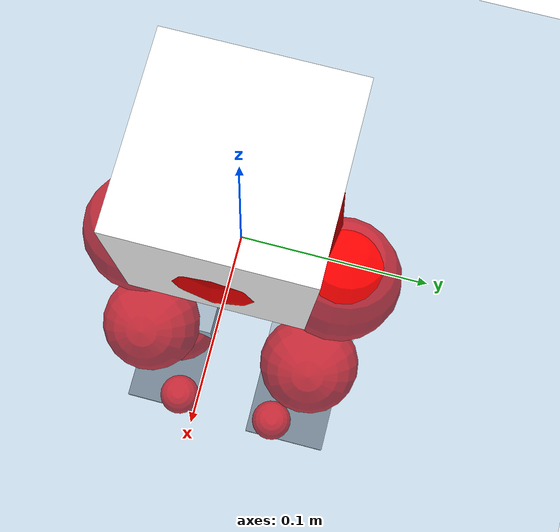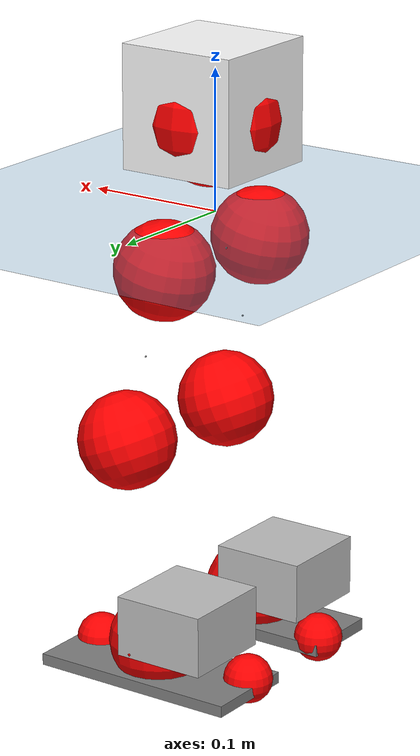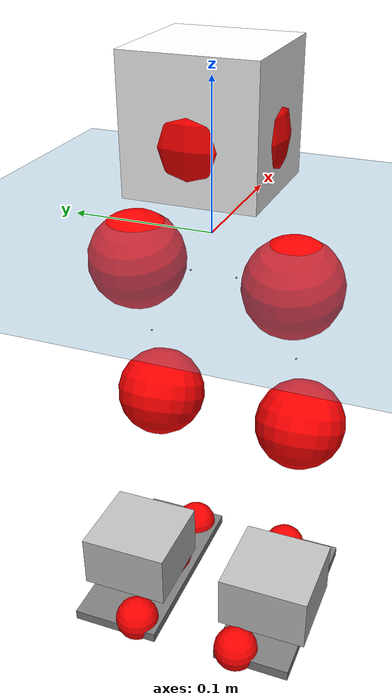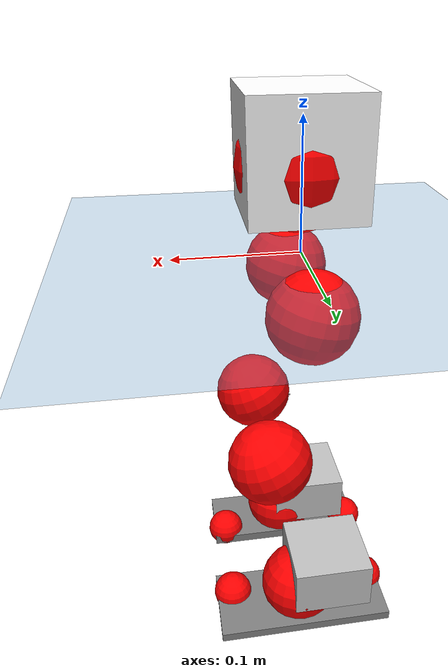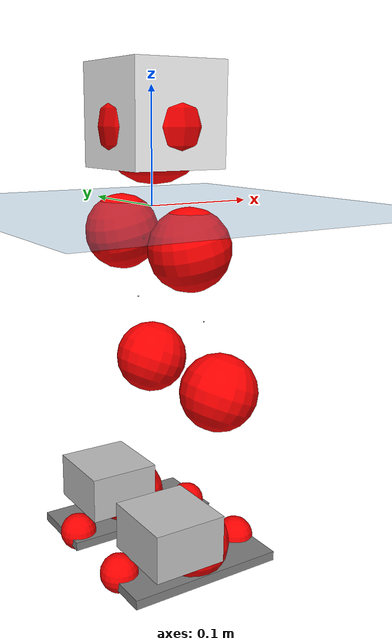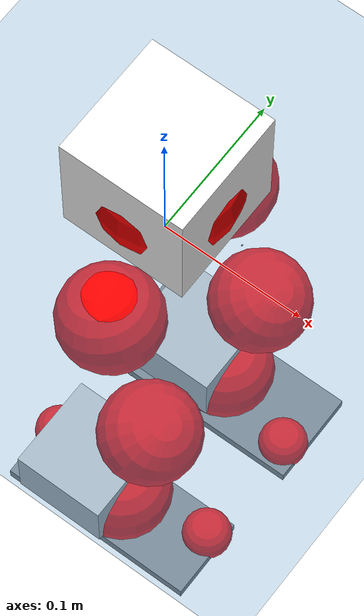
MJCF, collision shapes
<mujoco model="pi_12dof_release_v1">
  <compiler angle="radian" assetdir="assets" balanceinertia="true" inertiafromgeom="false"/>

  <option timestep="0.005" density="1.2" viscosity="2e-05"/>

  <size nkey="1"/>

  <visual>
    <quality shadowsize="8192"/>
    <map shadowclip="0.5"/>
  </visual>

  <default>
    <default class="/">
      <joint armature="0.01" damping="0.01" frictionloss="0.01"/>
      <geom contype="0" conaffinity="0" group="1" solref="-1000 -80"/>
      <site size="0.01 0.005 0.005" group="5"/>
      <general forcelimited="true" biastype="affine" gainprm="20" biasprm="0 -20 -0.5"/>
      <default class="foot">
        <geom size="0.0845 0.036 0.005" type="box" condim="6" group="4" priority="1" friction="0.9 0.2 0.2" solimp="0.015 1 0.005"/>
      </default>
      <default class="reward_collision_sphere">
        <geom group="5" rgba="1 0 0 1"/>
      </default>
    </default>
  </default>

  <asset>
    <texture type="skybox" colorspace="auto" name="//unnamed_texture_0" builtin="gradient" rgb1="0.95 0.95 0.95" rgb2="0.95 0.95 0.95" width="100" height="600"/>
    <texture type="2d" colorspace="auto" name="texplane" builtin="checker" rgb1="0.345 0.575 0.748" rgb2="0.345 0.575 0.748" markrgb="1 1 1" width="512" height="512"/>
    <material name="MatPlane" class="/" texture="texplane" texuniform="true" texrepeat="2 2" specular="0.9"/>
    <mesh name="baselink_1" class="/" file="baselink_1.STL"/>
    <mesh name="r_hip_pitch_link" class="/" file="r_hip_pitch_link.STL"/>
    <mesh name="r_hip_roll_link" class="/" file="r_hip_roll_link.STL"/>
    <mesh name="r_thigh_link" class="/" file="r_thigh_link.STL"/>
    <mesh name="r_calf_link" class="/" file="r_calf_link.STL"/>
    <mesh name="r_ankle_pitch_link" class="/" file="r_ankle_pitch_link.STL"/>
    <mesh name="r_ankle_roll_link" class="/" file="r_ankle_roll_link.STL"/>
    <mesh name="l_hip_pitch_link" class="/" file="l_hip_pitch_link.STL"/>
    <mesh name="l_hip_roll_link" class="/" file="l_hip_roll_link.STL"/>
    <mesh name="l_thigh_link" class="/" file="l_thigh_link.STL"/>
    <mesh name="l_calf_link" class="/" file="l_calf_link.STL"/>
    <mesh name="l_ankle_pitch_link" class="/" file="l_ankle_pitch_link.STL"/>
    <mesh name="l_ankle_roll_link" class="/" file="l_ankle_roll_link.STL"/>
  </asset>

  <worldbody>
    <geom name="floor" class="/" size="100 100 0.125" type="plane" group="0" material="MatPlane"/>
    <light name="toplight_shadow" class="/" pos="0 0 5" dir="0.0990148 0.0990148 -0.990148" type="directional" ambient="0.04 0.04 0.04" diffuse="0.55 0.55 0.55" specular="0.12 0.12 0.12"/>
    <light name="toplight_fill" class="/" pos="0 0 5" dir="0.0990148 0.0990148 -0.990148" type="directional" castshadow="false" ambient="0.04 0.04 0.04" diffuse="0.3 0.3 0.3" specular="0.08 0.08 0.08"/>
    <body name="trunk" pos="0.0021052 -0.000317811 0.000862991" quat="1 -0.000238595 0.000768186 0.000270424">
      <inertial pos="0.000179915 -0.0016751 0.0371868" quat="0.695217 0.00924915 0.0090868 0.718683" mass="1.36507" diaginertia="0.00710214 0.00192667 0.00286727"/>
      <joint name="//unnamed_joint_0" type="free"/>
      <geom name="//unnamed_geom_1" class="/" type="mesh" density="0" rgba="1 1 1 1" mesh="baselink_1"/>
      <geom name="//unnamed_geom_2" class="/" size="0.0434855 0.0434855 0.0434855" pos="0 0 0.0746226" type="box" rgba="1 1 1 1"/>
      <geom name="//unnamed_geom_3" class="reward_collision_sphere" size="0.047834" pos="0 0 0.0652948"/>
      <site name="imu" class="/" pos="-0.00216453 -0.00292361 0.00770003" size="0.0086971"/>
      <camera name="track" class="/" pos="0 -1.47235 0" quat="0.707107 0.707107 0 0" mode="trackcom"/>
      <camera name="ego_camera" class="/" pos="0.0705127 0 0.167901" quat="-0.5 -0.5 0.5 0.5"/>
      <body name="r_hip_pitch_link" pos="0.000236037 -0.0162464 -0.0313914" quat="0.99216 0.000523176 -0.124969 -0.000181822">
        <inertial pos="0.000705452 -0.042074 -0.000180128" quat="-0.0185093 0.704341 -0.0272485 0.709097" mass="0.245335" diaginertia="8.16213e-05 2.09568e-05 5.85359e-05"/>
        <joint name="r_hip_pitch_joint" class="/" pos="0 0 0" axis="-0.00201088 -0.999998 0.000450535" stiffness="0.00168233" range="-1.73296 1.25746" armature="0.00897641" damping="0.0182368" frictionloss="0.00890806"/>
        <geom name="//unnamed_geom_4" class="/" type="mesh" density="0" rgba="0.75294 0.75294 0.75294 1" mesh="r_hip_pitch_link"/>
        <geom name="//unnamed_geom_5" class="/" size="0.000434855 0.000434855 0.000434855" type="box" rgba="0.75294 0.75294 0.75294 1"/>
        <body name="r_hip_roll_link" pos="-0.000471644 -0.0400947 5.03129e-05" quat="1 -0.000208993 -0.000414179 -8.08222e-05">
          <inertial pos="-0.000472591 -0.000242957 -0.0590857" quat="0.706122 -0.07926 -0.08246 0.698791" mass="0.253639" diaginertia="0.000241754 6.00877e-05 9.26884e-05"/>
          <joint name="r_hip_roll_joint" class="/" pos="0 0 0" axis="-0.999996 0.000892976 -0.00257975" range="-0.110043 0.489566" armature="0.00913078" damping="0" frictionloss="0.00915737"/>
          <geom name="//unnamed_geom_6" class="/" type="mesh" density="0" rgba="0.75294 0.75294 0.75294 1" mesh="r_hip_roll_link"/>
          <geom name="//unnamed_geom_7" class="/" size="0.000434855 0.000434855 0.000434855" type="box" rgba="0.75294 0.75294 0.75294 1"/>
          <geom name="//unnamed_geom_8" class="reward_collision_sphere" size="0.0347884"/>
          <body name="r_thigh_link" pos="-0.000959737 -0.000729911 -0.0638655" quat="1 6.17735e-05 3.24853e-05 9.54945e-05">
            <inertial pos="-0.00050354 0.000849818 -0.044202" quat="0.734377 0.678737 0.00178745 -0.0018932" mass="0.0741337" diaginertia="9.47247e-05 2.10001e-05 4.15942e-05"/>
            <joint name="r_thigh_joint" class="/" pos="0 0 0" axis="-0.00187339 0.0010243 -0.999998" range="-0.317601 0.58559" armature="0.00885383" damping="0.00222177" frictionloss="0.00777427"/>
            <geom name="//unnamed_geom_9" class="/" type="mesh" density="0" rgba="0.75294 0.75294 0.75294 1" mesh="r_thigh_link"/>
            <geom name="//unnamed_geom_10" class="/" size="0.000434855 0.000434855 0.000434855" type="box" rgba="0.75294 0.75294 0.75294 1"/>
            <body name="r_calf_link" pos="-0.000973265 -0.00200633 -0.0674197" quat="0.947678 -0.000294181 0.319227 0.000199521">
              <inertial pos="-0.00116715 -0.00196774 -0.0649752" quat="0.999944 -0.0032702 0.00160586 0.00989371" mass="0.532411" diaginertia="0.0025849 0.000761921 0.000124144"/>
              <joint name="r_calf_joint" class="/" pos="0 0 0" axis="0.00140589 -0.999998 0.00130976" range="-1.61105 0.637314" armature="0.00859734" damping="0.00868205" frictionloss="0.0089614"/>
              <geom name="//unnamed_geom_11" class="/" type="mesh" density="0" rgba="0.75294 0.75294 0.75294 1" mesh="r_calf_link"/>
              <geom name="//unnamed_geom_12" class="/" size="0.000434855 0.000434855 0.000434855" type="box" rgba="0.75294 0.75294 0.75294 1"/>
              <geom name="//unnamed_geom_13" class="reward_collision_sphere" size="0.0347884"/>
              <body name="r_ankle_pitch_link" pos="-0.000177779 -0.000997979 -0.130898" quat="0.980063 -4.9734e-07 -0.198687 -1.0997e-05">
                <inertial pos="0.00399556 0.00204546 -0.000852715" quat="0.00239253 0.707095 -0.00225383 0.707111" mass="0.116629" diaginertia="0.000226926 4.89984e-05 8.66099e-05"/>
                <joint name="r_ankle_pitch_joint" class="/" pos="0 0 0" axis="0.000774359 -0.999971 0.00758396" range="-1.3167 0.497906" armature="0.00880702" damping="0.0037306" frictionloss="0.00848936"/>
                <geom name="//unnamed_geom_14" class="/" type="mesh" density="0" rgba="0.75294 0.75294 0.75294 1" mesh="r_ankle_pitch_link"/>
                <geom name="//unnamed_geom_15" class="/" size="0.0339187 0.0347884 0.0217427" type="box" rgba="0.75294 0.75294 0.75294 1"/>
                <body name="r_ankle_roll_link" pos="0.0717464 0.00267252 0.000727233" quat="1 -1.08837e-05 9.53701e-06 0.000148978">
                  <inertial pos="-0.0224127 0.00054258 -0.0136545" quat="0.56067 0.434694 0.43643 0.553371" mass="0.341965" diaginertia="0.000833705 0.000223523 0.00019937"/>
                  <joint name="r_ankle_roll_joint" class="/" pos="0 0 0" axis="-0.999941 -0.00349161 -0.0102993" range="-0.184425 0.157707" armature="0.00938334" damping="0.00713849" frictionloss="0.00869131"/>
                  <geom name="//unnamed_geom_16" class="/" type="mesh" density="0" rgba="0.75294 0.75294 0.75294 1" mesh="r_ankle_roll_link"/>
                  <geom name="//unnamed_geom_17" class="/" type="mesh" rgba="0.75294 0.75294 0.75294 1" mesh="r_ankle_roll_link"/>
                  <geom name="right_foot" class="foot" size="0.0734785 0.0302226 0.0043429" pos="-0.0479486 0 -0.0410424"/>
                  <geom name="//unnamed_geom_19" class="reward_collision_sphere" size="0.0347884" pos="-0.0470085 0 -0.0186557"/>
                  <geom name="//unnamed_geom_20" class="reward_collision_sphere" size="0.0173942" pos="0.0141025 0.0147235 -0.0373113"/>
                  <geom name="//unnamed_geom_21" class="reward_collision_sphere" size="0.0173942" pos="-0.11282 0.0147235 -0.0373113"/>
                  <site name="right_foot" class="foot" pos="-0.0479486 0 -0.0410424" size="0.0086971"/>
                </body>
              </body>
            </body>
          </body>
        </body>
      </body>
      <body name="l_hip_pitch_link" pos="-0.000208151 0.0167244 -0.030912" quat="0.992195 -3.9178e-05 -0.124693 -1.28755e-05">
        <inertial pos="-0.000179696 0.0413145 -0.000488946" quat="-0.0348335 0.701833 0.0383906 0.710453" mass="0.261527" diaginertia="9.4645e-05 2.27692e-05 7.23768e-05"/>
        <joint name="l_hip_pitch_joint" class="/" pos="0 0 0" axis="0.00218133 0.999954 -0.00929987" range="-1.26742 1.75197" armature="0.0085552" damping="0.00609192" frictionloss="0.00871851"/>
        <geom name="//unnamed_geom_22" class="/" type="mesh" density="0" rgba="0.75294 0.75294 0.75294 1" mesh="l_hip_pitch_link"/>
        <geom name="//unnamed_geom_23" class="/" size="0.000434855 0.000434855 0.000434855" type="box" rgba="0.75294 0.75294 0.75294 1"/>
        <body name="l_hip_roll_link" pos="0.000418026 0.0399582 0.00163085" quat="1 9.80569e-05 -0.000217667 7.55508e-05">
          <inertial pos="-0.00143681 -2.70601e-05 -0.0569566" quat="0.698431 -0.0721039 -0.0746664 0.708111" mass="0.259499" diaginertia="0.000242606 5.9724e-05 8.99932e-05"/>
          <joint name="l_hip_roll_joint" class="/" pos="0 0 0" axis="-0.999992 -0.0010618 -0.00388592" range="-0.510702 0.132249" armature="0.00903993" damping="0.00534629" frictionloss="0.00911706"/>
          <geom name="//unnamed_geom_24" class="/" type="mesh" density="0" rgba="0.75294 0.75294 0.75294 1" mesh="l_hip_roll_link"/>
          <geom name="//unnamed_geom_25" class="/" size="0.000434855 0.000434855 0.000434855" type="box" rgba="0.75294 0.75294 0.75294 1"/>
          <geom name="//unnamed_geom_26" class="reward_collision_sphere" size="0.0347884"/>
          <body name="l_thigh_link" pos="0.000198302 -0.000701644 -0.0663742" quat="1 2.53446e-05 -1.21115e-05 2.76264e-05">
            <inertial pos="0.00130647 0.000550526 -0.0446786" quat="0.676128 0.736778 -2.27646e-05 -0.00315417" mass="0.0733211" diaginertia="9.13904e-05 2.02662e-05 3.93927e-05"/>
            <joint name="l_thigh_joint" class="/" pos="0 0 0" axis="0.00141715 0.00424305 -0.99999" range="-0.602917 0.301308" armature="0.00839808" damping="0" frictionloss="0.0084012"/>
            <geom name="//unnamed_geom_27" class="/" type="mesh" density="0" rgba="0.75294 0.75294 0.75294 1" mesh="l_thigh_link"/>
            <geom name="//unnamed_geom_28" class="/" size="0.000434855 0.000434855 0.000434855" type="box" rgba="0.75294 0.75294 0.75294 1"/>
            <body name="l_calf_link" pos="-0.000613154 0.0010586 -0.0652049" quat="0.947707 -0.000169716 0.319141 0.000931174">
              <inertial pos="0.0022585 0.00244805 -0.0674519" quat="0.999979 0.0035135 0.000773018 0.00533352" mass="0.536455" diaginertia="0.00259848 0.000759307 0.00012262"/>
              <joint name="l_calf_joint" class="/" pos="0 0 0" axis="0.000273139 0.999997 0.00241091" stiffness="0.00374509" range="-0.658849 1.66118" armature="0.00839537" damping="0.00626223" frictionloss="0.00818984"/>
              <geom name="//unnamed_geom_29" class="/" type="mesh" density="0" rgba="0.75294 0.75294 0.75294 1" mesh="l_calf_link"/>
              <geom name="//unnamed_geom_30" class="/" size="0.000434855 0.000434855 0.000434855" type="box" rgba="0.75294 0.75294 0.75294 1"/>
              <geom name="//unnamed_geom_31" class="reward_collision_sphere" size="0.0347884"/>
              <body name="l_ankle_pitch_link" pos="0.00114505 0.000498358 -0.132577" quat="0.980063 -3.85556e-06 -0.198685 -2.099e-05">
                <inertial pos="0.00426849 -0.000496282 -0.000112686" quat="-0.00182273 0.707541 0.00244857 0.706666" mass="0.113924" diaginertia="0.000225165 4.79172e-05 8.47674e-05"/>
                <joint name="l_ankle_pitch_joint" class="/" pos="0 0 0" axis="0.00102934 0.999999 -0.000476896" range="-0.503454 1.31458" armature="0.00864405" damping="0.0113856" frictionloss="0.0082862"/>
                <geom name="//unnamed_geom_32" class="/" type="mesh" density="0" rgba="0.75294 0.75294 0.75294 1" mesh="l_ankle_pitch_link"/>
                <geom name="//unnamed_geom_33" class="/" size="0.0339187 0.0347884 0.0217427" type="box" rgba="0.75294 0.75294 0.75294 1"/>
                <body name="l_ankle_roll_link" pos="0.0713368 0.000214574 -0.000781883" quat="1 0.000181519 9.31479e-05 0.000142165">
                  <inertial pos="-0.0238852 -1.16513e-05 -0.0132671" quat="0.558048 0.430461 0.433798 0.561343" mass="0.339602" diaginertia="0.000820469 0.000221991 0.00020236"/>
                  <joint name="l_ankle_roll_joint" class="/" pos="0 0 0" axis="-0.999964 -0.00342107 0.0077447" range="-0.150747 0.134517" armature="0.00908796" damping="0.0103896" frictionloss="0.00913072"/>
                  <geom name="//unnamed_geom_34" class="/" type="mesh" density="0" rgba="0.75294 0.75294 0.75294 1" mesh="l_ankle_roll_link"/>
                  <geom name="//unnamed_geom_35" class="/" type="mesh" rgba="0.75294 0.75294 0.75294 1" mesh="l_ankle_roll_link"/>
                  <geom name="left_foot" class="foot" size="0.0768225 0.0348998 0.00408532" pos="-0.0479486 0 -0.0410424"/>
                  <geom name="//unnamed_geom_37" class="reward_collision_sphere" size="0.0347884" pos="-0.0470085 0 -0.0186557"/>
                  <geom name="//unnamed_geom_38" class="reward_collision_sphere" size="0.0173942" pos="0.0141025 -0.0147235 -0.0373113"/>
                  <geom name="//unnamed_geom_39" class="reward_collision_sphere" size="0.0173942" pos="-0.11282 -0.0147235 -0.0373113"/>
                  <site name="left_foot" class="foot" pos="-0.0479486 0 -0.0410424" size="0.0086971"/>
                </body>
              </body>
            </body>
          </body>
        </body>
      </body>
    </body>
  </worldbody>

  <contact>
    <pair class="/" geom1="floor" geom2="right_foot" name="//unnamed_contact_1"/>
    <pair class="/" geom1="floor" geom2="left_foot" name="//unnamed_contact_0"/>
  </contact>

  <actuator>
    <general name="r_hip_pitch_joint" class="/" joint="r_hip_pitch_joint" forcerange="-18.5123 18.5123" gainprm="17.4115" biasprm="0 -17.4115 -0.427014"/>
    <general name="r_hip_roll_joint" class="/" joint="r_hip_roll_joint" forcerange="-18.0677 18.0677" gainprm="17.4115" biasprm="0 -17.4115 -0.427014"/>
    <general name="r_thigh_joint" class="/" joint="r_thigh_joint" forcerange="-18.0761 18.0761" gainprm="17.4115" biasprm="0 -17.4115 -0.427014"/>
    <general name="r_calf_joint" class="/" joint="r_calf_joint" forcerange="-19.6303 19.6303" gainprm="17.4115" biasprm="0 -17.4115 -0.427014"/>
    <general name="r_ankle_pitch_joint" class="/" joint="r_ankle_pitch_joint" forcerange="-18.2717 18.2717" gainprm="17.4115" biasprm="0 -17.4115 -0.427014"/>
    <general name="r_ankle_roll_joint" class="/" joint="r_ankle_roll_joint" forcerange="-17.172 17.172" gainprm="17.4115" biasprm="0 -17.4115 -0.427014"/>
    <general name="l_hip_pitch_joint" class="/" joint="l_hip_pitch_joint" forcerange="-18.2264 18.2264" gainprm="17.4115" biasprm="0 -17.4115 -0.427014"/>
    <general name="l_hip_roll_joint" class="/" joint="l_hip_roll_joint" forcerange="-18.7095 18.7095" gainprm="17.4115" biasprm="0 -17.4115 -0.427014"/>
    <general name="l_thigh_joint" class="/" joint="l_thigh_joint" forcerange="-17.9072 17.9072" gainprm="17.4115" biasprm="0 -17.4115 -0.427014"/>
    <general name="l_calf_joint" class="/" joint="l_calf_joint" forcerange="-18.3901 18.3901" gainprm="17.4115" biasprm="0 -17.4115 -0.427014"/>
    <general name="l_ankle_pitch_joint" class="/" joint="l_ankle_pitch_joint" forcerange="-17.7769 17.7769" gainprm="17.4115" biasprm="0 -17.4115 -0.427014"/>
    <general name="l_ankle_roll_joint" class="/" joint="l_ankle_roll_joint" forcerange="-18.3604 18.3604" gainprm="17.4115" biasprm="0 -17.4115 -0.427014"/>
  </actuator>

  <sensor>
    <gyro site="imu" name="imu_angular_velocity"/>
    <velocimeter site="imu" name="imu_linear_velocity"/>
    <framelinvel objtype="site" objname="left_foot" name="left_foot_global_linear_velocity"/>
    <framelinvel objtype="site" objname="right_foot" name="right_foot_global_linear_velocity"/>
  </sensor>

  <keyframe>
    <key name="home" qpos="0 0 0.291 1 0 0 0 0.4 0 0 -0.8 0.4 0 -0.4 0 0 0.8 -0.4 0"/>
  </keyframe>
</mujoco>
